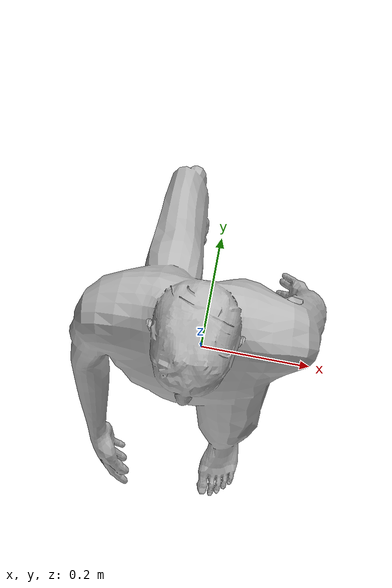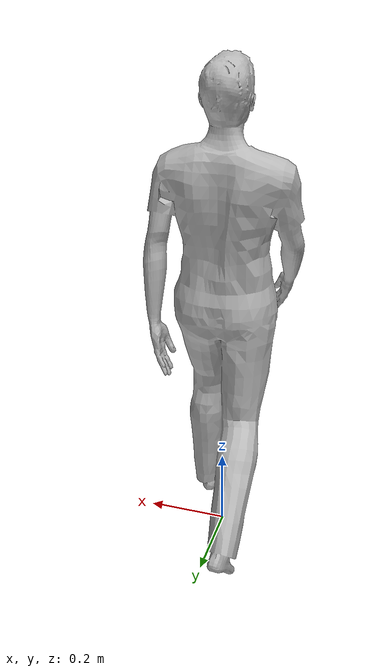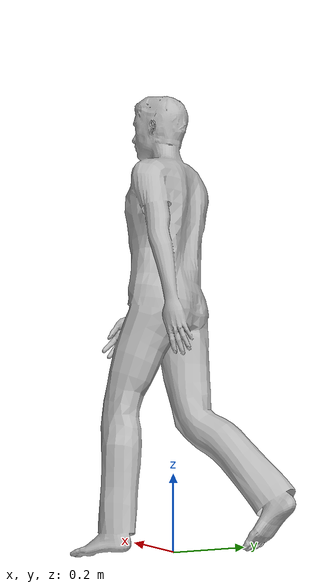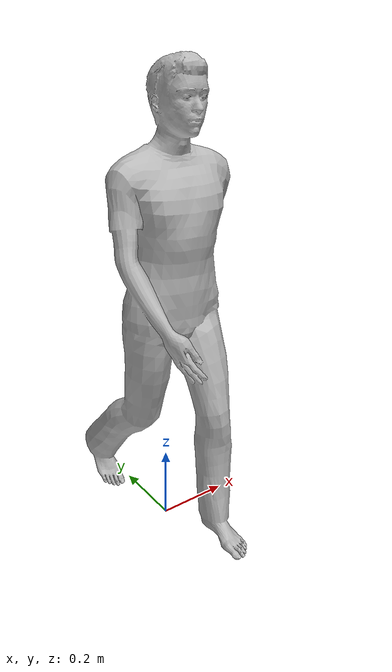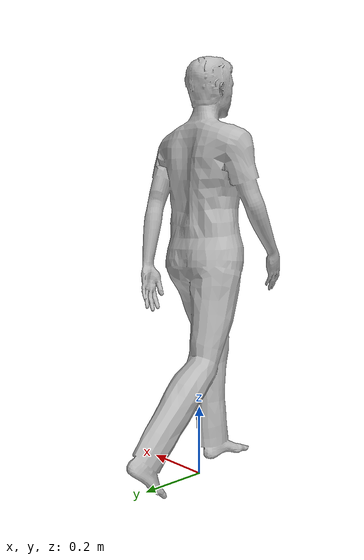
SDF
<?xml version="1.0" ?>
<sdf version="1.5">
  <model name="child_walking">
    <link name="link">
      <inertial>
        <pose>0 0 0.62 0 0 0</pose>
        <mass>25.0</mass>
        <inertia>
          <ixx>7.0</ixx><ixy>0</ixy><ixz>0</ixz>
          <iyy>6.5</iyy><iyz>0</iyz><izz>1.2</izz>
        </inertia>
      </inertial>

      <collision name="bottom">
        <pose>0 0 0.01 0 0 0</pose>
        <geometry>
          <box><size>0.23 0.49 0.02</size></box>
        </geometry>
      </collision>

      <collision name="person">
        <pose>0 0 -0.02 0 0 0</pose>
        <geometry>
          <mesh>
            <uri>model://person_walking/meshes/walking.dae</uri>
            <scale>0.65 0.65 0.65</scale>
          </mesh>
        </geometry>
      </collision>

      <visual name="visual">
        <pose>0 0 -0.02 0 0 0</pose>
        <geometry>
          <mesh>
            <uri>model://person_walking/meshes/walking.dae</uri>
            <scale>0.65 0.65 0.65</scale>
          </mesh>
        </geometry>
      </visual>
    </link>
  </model>
</sdf>
